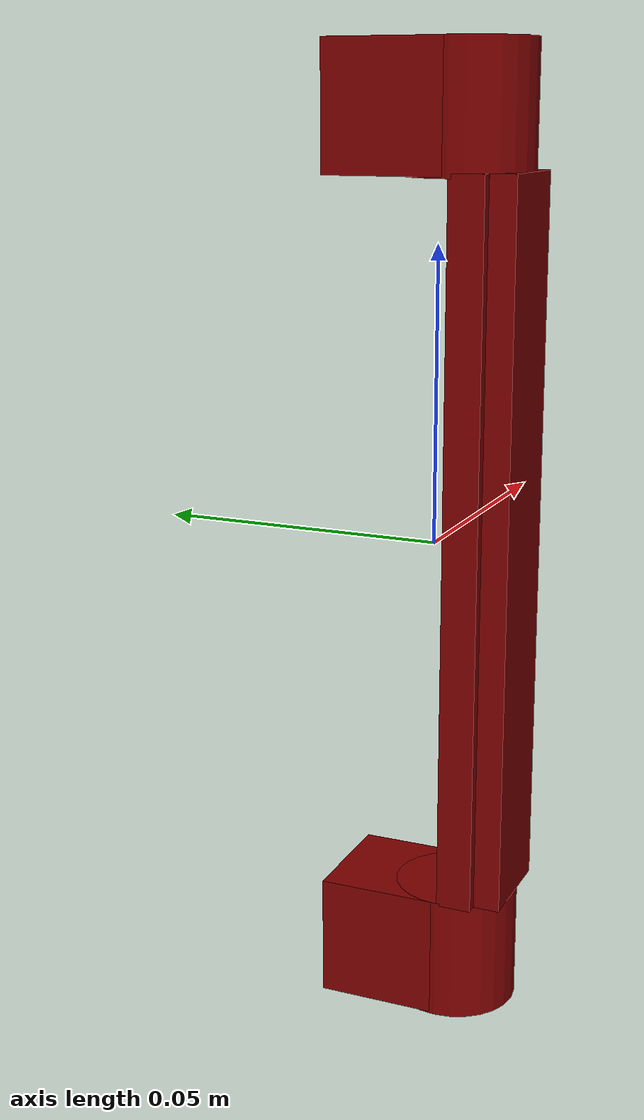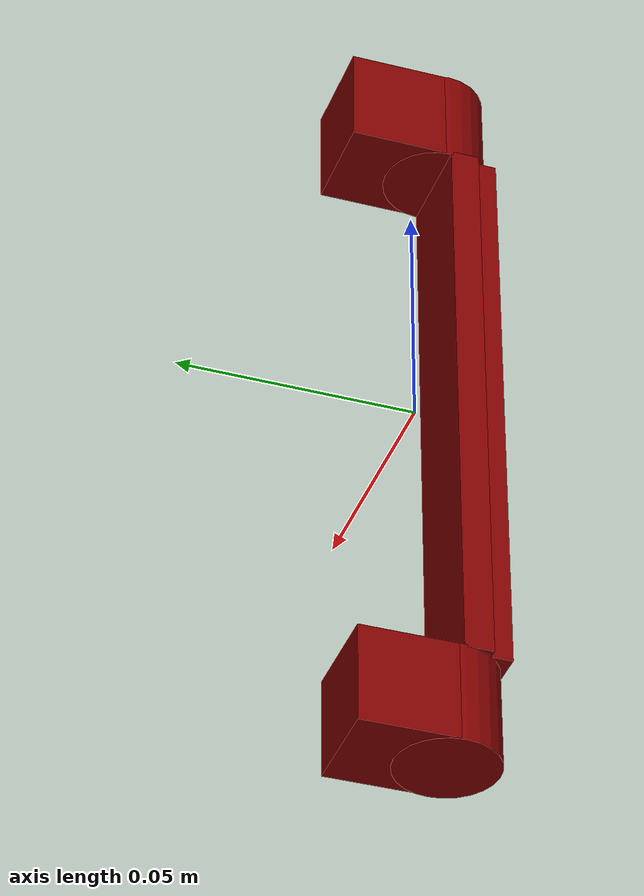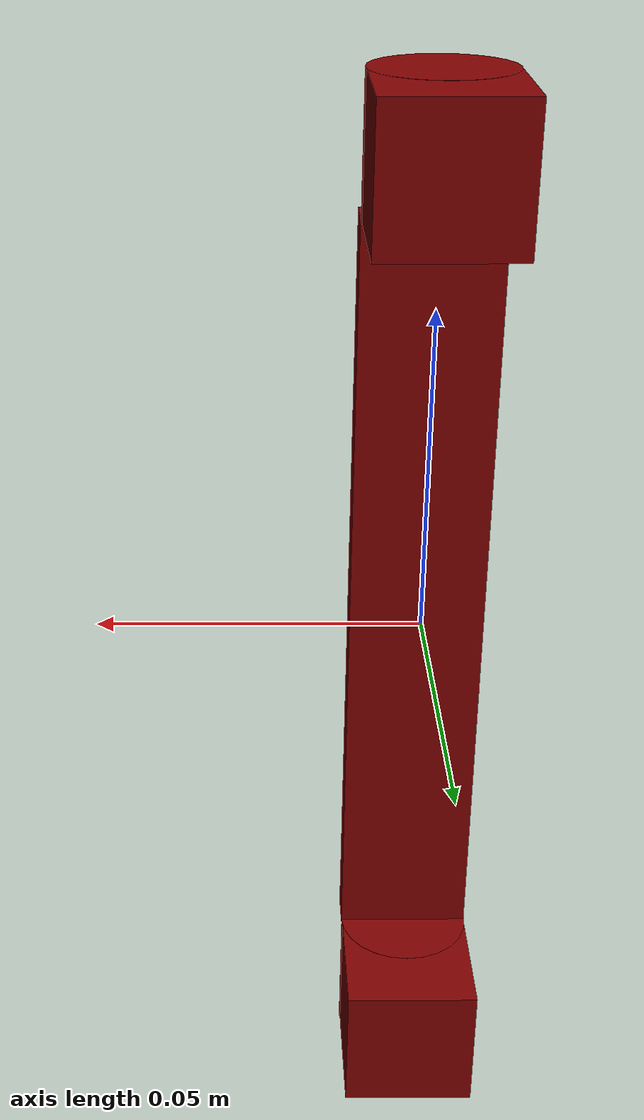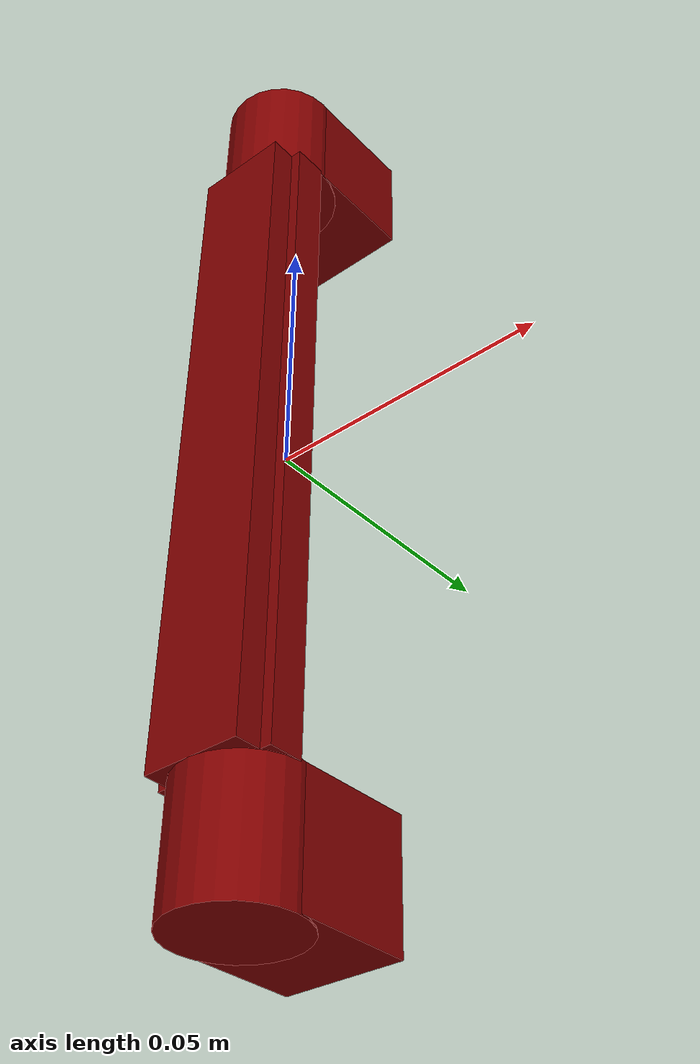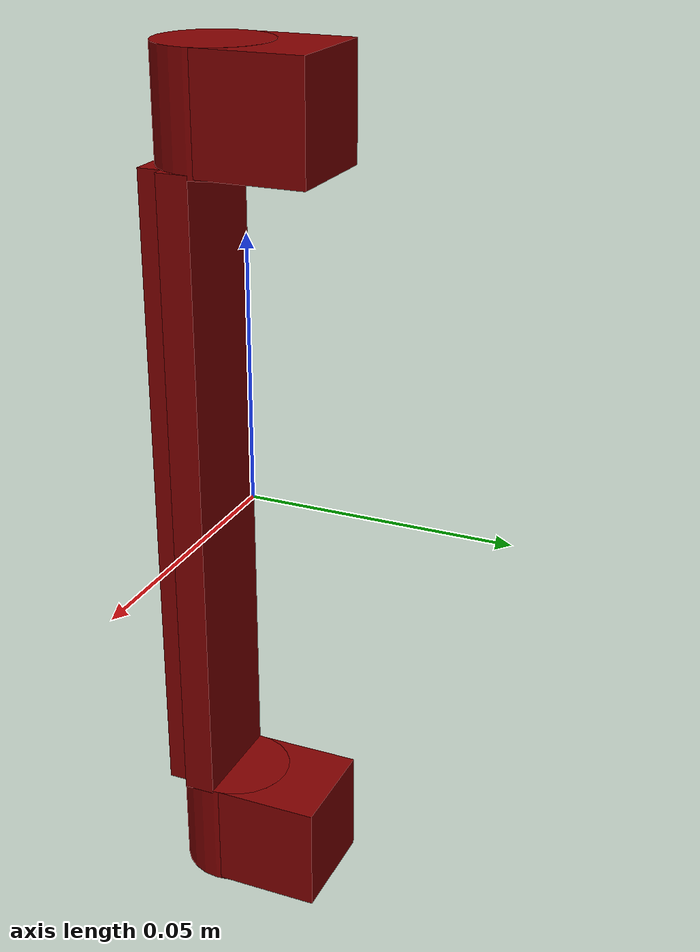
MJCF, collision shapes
<?xml version='1.0' encoding='UTF-8'?>
<mujoco model="model">
  <option timestep="0.002" gravity="0.0 0.0 -9.81"/>
  <compiler angle="radian"/>
  <asset>
    <mesh file="visuals/CabinetHandle010.obj" name="CabinetHandle010_vis"/>
    <texture file="visuals/T_BC001.png" name="tex" type="2d"/>
    <material name="mat" rgba="1 1 1 1.0" texture="tex" shininess="-1023.0" specular="0.3103448502657381"/>
  </asset>
  <default>
    <default class="visual">
      <geom conaffinity="0" contype="0" group="1" type="mesh"/>
    </default>
    <default class="collision">
      <geom group="0" rgba="0.5 0 0 0.5" density="1.0" solref="0.004 1" solimp="0.998 0.998 0.001"/>
    </default>
    <default class="spawn">
      <geom group="0" rgba="1 1 1 0.5" contype="0" conaffinity="0"/>
      <site group="0" rgba="1 1 1 0.5"/>
    </default>
    <default class="region">
      <geom group="1" conaffinity="0" contype="0" rgba="0 1 0 0" mass="0"/>
    </default>
  </default>
  <worldbody>
    <body>
      <body name="object">
        <geom mesh="CabinetHandle010_vis" type="mesh" solimp="0.998 0.998 0.001" solref="0.001 1" friction="0.95 0.3 0.1" class="visual" material="mat"/>
        <geom type="cylinder" pos="0.0 -0.005160082131624222 0.07152626663446426" size="0.010653411969542503 0.010653411969542503" quat="1.0 0.0 0.0 0.0" class="collision"/>
        <geom type="cylinder" pos="0.0 -0.005160082131624222 -0.0717424750328064" size="0.010653411969542503 0.010653411969542503" quat="1.0 0.0 0.0 0.0" class="collision"/>
        <geom type="box" pos="-1.5903632537295627e-17 0.005621281918138266 0.07162359356880188" size="0.010529065504670143 0.010529065504670143 0.010529065504670143" quat="1.0 0.0 0.0 0.0" class="collision"/>
        <geom type="box" pos="-1.5903632537295627e-17 0.005621281918138266 -0.07162664830684662" size="0.010529065504670143 0.010529065504670143 0.010529065504670143" quat="1.0 0.0 0.0 0.0" class="collision"/>
        <geom type="box" pos="5.780190622317605e-05 -0.008265664801001549 0.00010503455996513367" size="0.010635427199304104 0.003022677032276988 0.06161217391490936" quat="1.0 0.0 0.0 0.0" class="collision"/>
        <geom type="box" pos="5.780190622317605e-05 -0.013515489175915718 0.00010503455996513367" size="0.008648471906781197 0.0023121268022805452 0.06161217391490936" quat="1.0 0.0 0.0 0.0" class="collision"/>
        <geom class="region" name="reg_main" type="box" pos="2.3283064365386963e-10 0.0 0.0" size="0.011496812872588635 0.016745213255286218 0.08305513656139374"/>
      </body>
    </body>
  </worldbody>
  <actuator/>
</mujoco>
